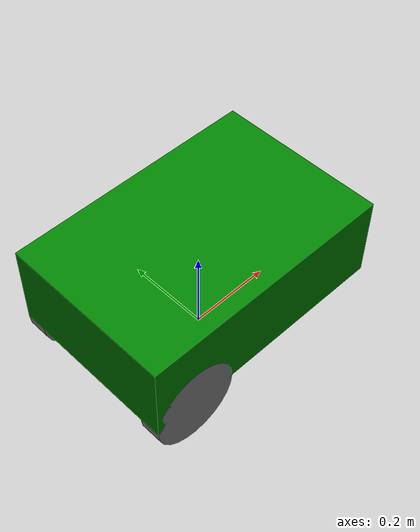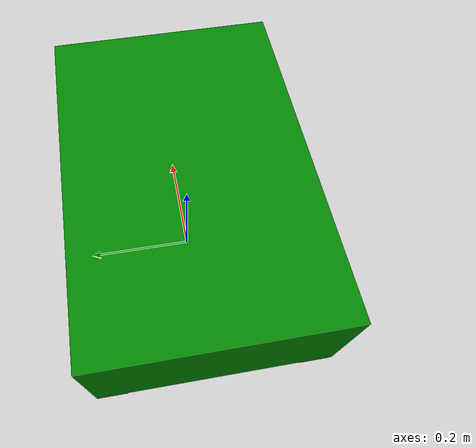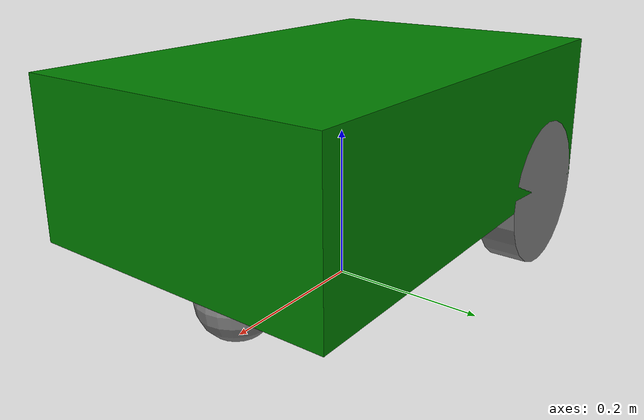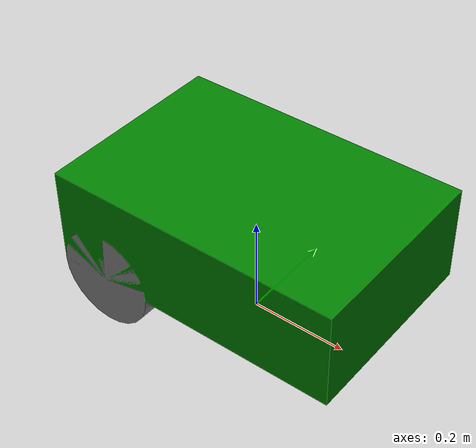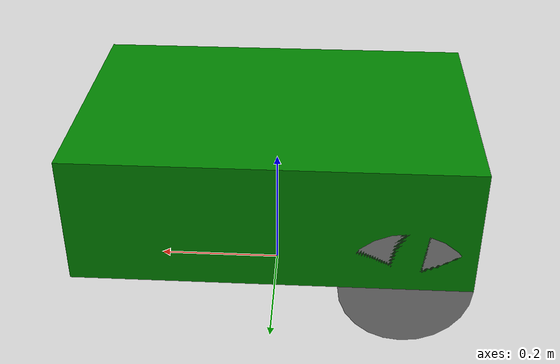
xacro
<?xml version="1.0"?>
<robot name="xx_robot" xmlns:xacro="http://www.ros.org/wiki/xacro">

  <xacro:property name="base_length" value="0.6" />
  <xacro:property name="base_width" value="0.4" />
  <xacro:property name="base_height" value="0.2" />
  <xacro:property name="wheel_radius" value="0.1" />
  <xacro:property name="wheel_length" value="0.05" />

  <material name="green">
    <color rgba="0 0.5 0 1" />
  </material>
  <material name="grey">
    <color rgba="0.5 0.5 0.5 1" />
  </material>

  <link name="base_footprint" />

  <link name="base_link">
    <visual>
      <geometry>
        <box size="${base_length} ${base_width} ${base_height}" />
      </geometry>
      <origin xyz="0 0 ${base_height/2.0}" rpy="0 0 0" />
      <material name="green" />
    </visual>
  </link>

  <link name="right_wheel_link">
    <visual>
      <geometry>
        <cylinder radius="${wheel_radius}" length="${wheel_length}" />
      </geometry>
      <origin xyz="0 0 0" rpy="${pi/2.0} 0 0" />
      <material name="grey" />
    </visual>
  </link>

  <link name="left_wheel_link">
    <visual>
      <geometry>
        <cylinder radius="${wheel_radius}" length="${wheel_length}" />
      </geometry>
      <origin xyz="0 0 0" rpy="${pi/2.0} 0 0" />
      <material name="grey" />
    </visual>
  </link>

  <link name="caster_wheel_link">
    <visual>
      <geometry>
        <sphere radius="${wheel_radius/2.0}" />
      </geometry>
      <origin xyz="0 0 0" rpy="0 0 0" />
      <material name="grey" />
    </visual>
  </link>

  <joint name="base_joint" type="fixed">
    <parent link="base_footprint" />
    <child link="base_link" />
    <origin xyz="0 0 0.1" rpy="0 0 0"/>
  </joint>

  <joint name="base_right_wheel_joint" type="continuous">
    <parent link="base_link" />
    <child link="right_wheel_link" />
    <origin xyz="${-base_length * 2.0 / 6.0} ${-(base_width - wheel_length)/2.0} 0" rpy="0 0 0" />
    <axis xyz="0 1 0" />
  </joint>

  <joint name="base_left_wheel_joint" type="continuous">
    <parent link="base_link" />
    <child link="left_wheel_link" />
    <origin xyz="${-base_length * 2.0 / 6.0} ${(base_width - wheel_length)/2.0} 0" rpy="0 0 0" />
    <axis xyz="0 1 0" />
  </joint>

  <joint name="base_caster_wheel_joint" type="fixed">
    <parent link="base_link" />
    <child link="caster_wheel_link" />
    <origin xyz="${base_length * 2.0 / 6.0} 0 ${-wheel_radius/2.0}" rpy="0 0 0" />
  </joint>

</robot>
